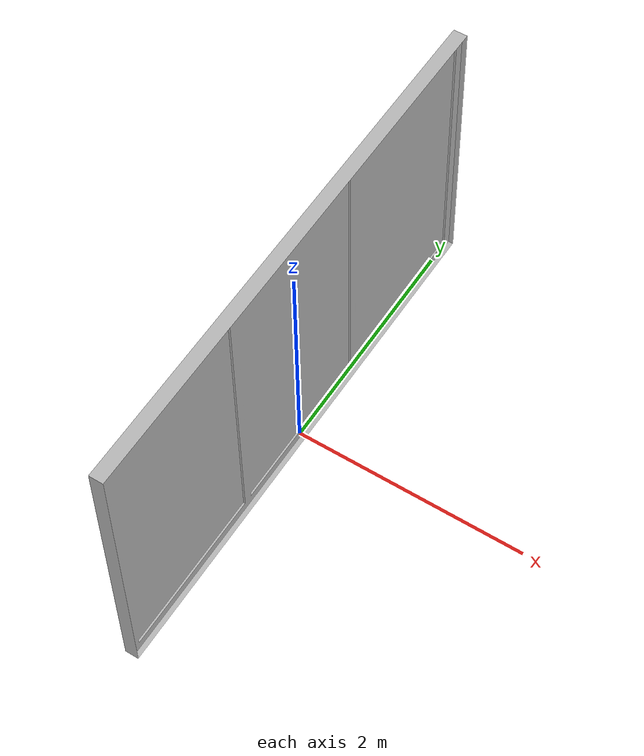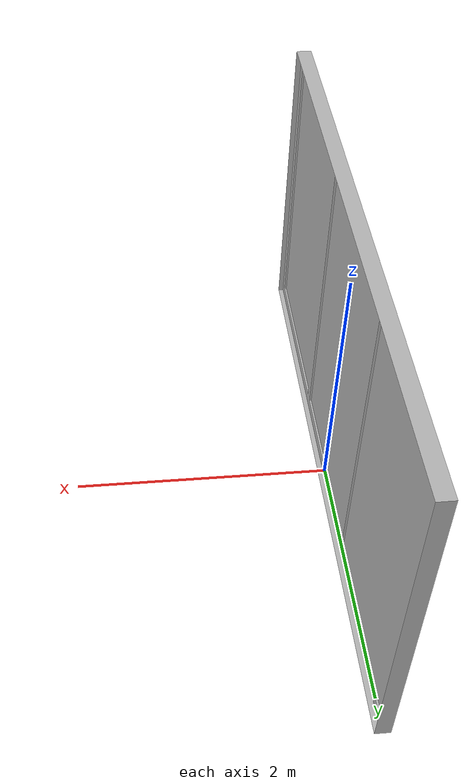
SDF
<?xml version='1.0'?>
<sdf version='1.4'>
  <model name='754'>
    <pose>0 0 0 0 0 0</pose>
    <static>true</static>
    <link name='link'>
      <collision name='collision'>
        <pose>0 0 0 0 0 0</pose>
        <geometry>
          <box>
            <size>0.115 4.5 2</size>
          </box>
        </geometry>
      </collision>
      <visual name='visual'>
        <pose>0 0 0 0 0 0</pose>
        <geometry>
          <mesh><uri>model://754/754.dae</uri></mesh>
        </geometry>
      </visual>
    </link>
  </model>
</sdf>
